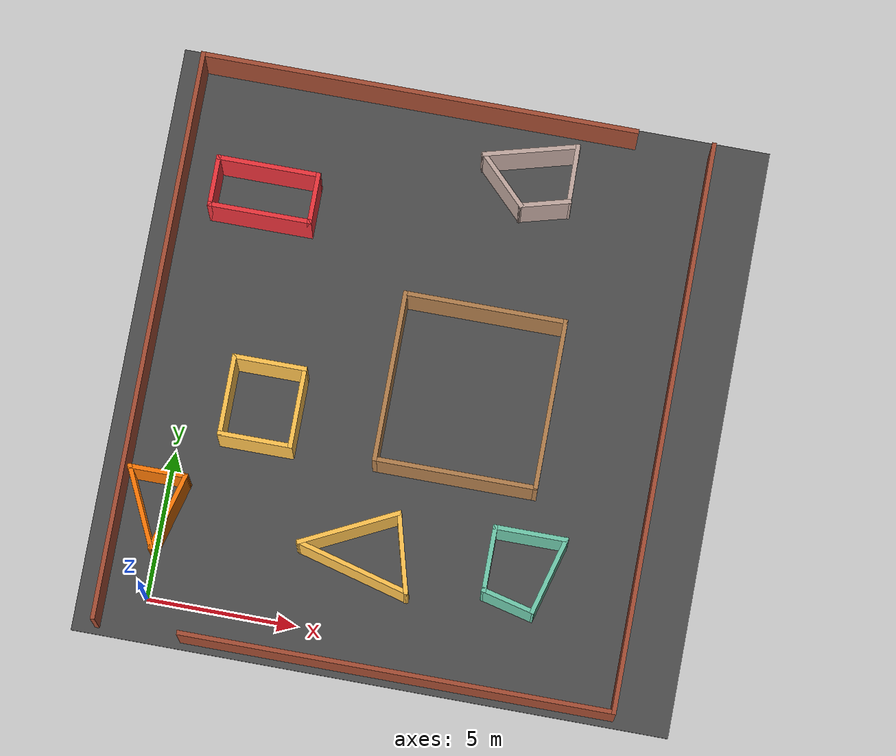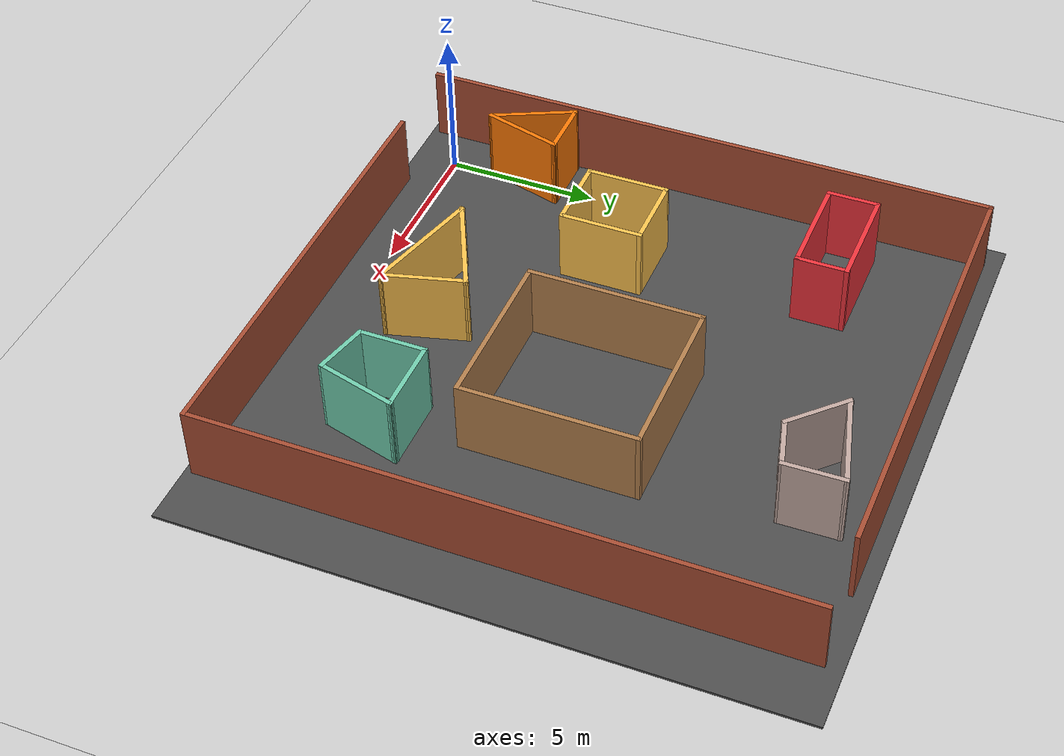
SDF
<sdf version="1.7">
 <world name="default">
  <light name="sun" type="directional">
   <pose>0 0 10 0 -0 0</pose>
   <diffuse>0.8 0.8 0.8 1</diffuse>
   <specular>0.2 0.2 0.2 1</specular>
   <attenuation>
    <range>1000</range>
    <constant>0.9</constant>
    <linear>0.01</linear>
    <quadratic>0.001</quadratic>
   </attenuation>
   <direction>-0.5 0.1 -0.9</direction>
   <spot><inner_angle>0</inner_angle><outer_angle>0</outer_angle><falloff>0</falloff></spot>
  </light>
  <model name="ground_plane">
   <static>1</static>
   <link name="link">
    <collision name="collision">
     <geometry><plane><normal>0 0 1</normal><size>100 100</size></plane></geometry>
     <surface><friction><ode><mu>100</mu><mu2>50</mu2></ode></friction></surface>
    </collision>
    <visual name="visual">
     <cast_shadows>0</cast_shadows>
     <geometry><plane><normal>0 0 1</normal><size>100 100</size></plane></geometry>
     <material>
      <script><uri>file://media/materials/scripts/gazebo.material</uri><name>Gazebo/Grey</name></script>
     </material>
    </visual>
   </link>
  </model>
  <gravity>0 0 -9.8</gravity>
  <magnetic_field>6e-06 2.3e-05 -4.2e-05</magnetic_field>
  <atmosphere type="adiabatic"/>
  <physics type="ode">
   <max_step_size>0.001</max_step_size>
   <real_time_factor>1</real_time_factor>
   <real_time_update_rate>1000</real_time_update_rate>
  </physics>
  <scene><ambient>0.4 0.4 0.4 1</ambient><background>0.7 0.7 0.7 1</background><shadows>1</shadows></scene>
  <audio><device>default</device></audio>
  <spherical_coordinates>
   <surface_model>EARTH_WGS84</surface_model>
   <latitude_deg>0</latitude_deg>
   <longitude_deg>0</longitude_deg>
   <elevation>0</elevation>
   <heading_deg>0</heading_deg>
  </spherical_coordinates>
  <model name="random">
   <pose>7.1567 8.40396 0 0 -0 0</pose>
   <link name="Wall_2">
    <collision name="Wall_2_Collision">
     <geometry><box><size>14.75 0.15 2.5</size></box></geometry>
     <pose>0 0 1.25 0 -0 0</pose>
    </collision>
    <visual name="Wall_2_Visual">
     <pose>0 0 1.25 0 -0 0</pose>
     <geometry><box><size>14.75 0.15 2.5</size></box></geometry>
     <material>
      <script><uri>file://media/materials/scripts/gazebo.material</uri><name>Gazebo/Bricks</name></script>
      <ambient>1 1 1 1</ambient>
     </material>
     <meta><layer>0</layer></meta>
    </visual>
    <pose>-1.30175 9.55 0 0 -0 0</pose>
   </link>
   <link name="Wall_4">
    <collision name="Wall_4_Collision">
     <geometry><box><size>14.5 0.15 2.5</size></box></geometry>
     <pose>0 0 1.25 0 -0 0</pose>
    </collision>
    <visual name="Wall_4_Visual">
     <pose>0 0 1.25 0 -0 0</pose>
     <geometry><box><size>14.5 0.15 2.5</size></box></geometry>
     <material>
      <script><uri>file://media/materials/scripts/gazebo.material</uri><name>Gazebo/Bricks</name></script>
      <ambient>1 1 1 1</ambient>
     </material>
     <meta><layer>0</layer></meta>
    </visual>
    <pose>1.42675 -9.55 0 0 -0 3.14159</pose>
   </link>
   <link name="Wall_46">
    <collision name="Wall_46_Collision">
     <geometry><box><size>2.75 0.15 2.5</size></box></geometry>
     <pose>0 0 1.25 0 -0 0</pose>
    </collision>
    <visual name="Wall_46_Visual">
     <pose>0 0 1.25 0 -0 0</pose>
     <geometry><box><size>2.75 0.15 2.5</size></box></geometry>
     <material>
      <script><uri>file://media/materials/scripts/gazebo.material</uri><name>Gazebo/Grey</name></script>
      <ambient>1 0.764706 0.305882 1</ambient>
     </material>
     <meta><layer>0</layer></meta>
    </visual>
    <pose>-5.68095 -1.56271 0 0 -0 -1.5708</pose>
   </link>
   <link name="Wall_47">
    <collision name="Wall_47_Collision">
     <geometry><box><size>2.5 0.15 2.5</size></box></geometry>
     <pose>0 0 1.25 0 -0 0</pose>
    </collision>
    <visual name="Wall_47_Visual">
     <pose>0 0 1.25 0 -0 0</pose>
     <geometry><box><size>2.5 0.15 2.5</size></box></geometry>
     <material>
      <script><uri>file://media/materials/scripts/gazebo.material</uri><name>Gazebo/Grey</name></script>
      <ambient>1 0.764706 0.305882 1</ambient>
     </material>
     <meta><layer>0</layer></meta>
    </visual>
    <pose>-4.50595 -2.86271 0 0 -0 0</pose>
   </link>
   <link name="Wall_48">
    <collision name="Wall_48_Collision">
     <geometry><box><size>2.75 0.15 2.5</size></box></geometry>
     <pose>0 0 1.25 0 -0 0</pose>
    </collision>
    <visual name="Wall_48_Visual">
     <pose>0 0 1.25 0 -0 0</pose>
     <geometry><box><size>2.75 0.15 2.5</size></box></geometry>
     <material>
      <script><uri>file://media/materials/scripts/gazebo.material</uri><name>Gazebo/Grey</name></script>
      <ambient>1 0.764706 0.305882 1</ambient>
     </material>
     <meta><layer>0</layer></meta>
    </visual>
    <pose>-3.33095 -1.56271 0 0 -0 1.5708</pose>
   </link>
   <link name="Wall_49">
    <collision name="Wall_49_Collision">
     <geometry><box><size>2.5 0.15 2.5</size></box></geometry>
     <pose>0 0 1.25 0 -0 0</pose>
    </collision>
    <visual name="Wall_49_Visual">
     <pose>0 0 1.25 0 -0 0</pose>
     <geometry><box><size>2.5 0.15 2.5</size></box></geometry>
     <material>
      <script><uri>file://media/materials/scripts/gazebo.material</uri><name>Gazebo/Grey</name></script>
      <ambient>1 0.764706 0.305882 1</ambient>
     </material>
     <meta><layer>0</layer></meta>
    </visual>
    <pose>-4.50595 -0.262712 0 0 -0 3.14159</pose>
   </link>
   <link name="Wall_51">
    <collision name="Wall_51_Collision">
     <geometry><box><size>5.5 0.15 2.5</size></box></geometry>
     <pose>0 0 1.25 0 -0 0</pose>
    </collision>
    <visual name="Wall_51_Visual">
     <pose>0 0 1.25 0 -0 0</pose>
     <geometry><box><size>5.5 0.15 2.5</size></box></geometry>
     <material>
      <script><uri>file://media/materials/scripts/gazebo.material</uri><name>Gazebo/Wood</name></script>
      <ambient>1 1 1 1</ambient>
     </material>
     <meta><layer>0</layer></meta>
    </visual>
    <pose>2.13455 -2.78121 0 0 -0 0</pose>
   </link>
   <link name="Wall_52">
    <collision name="Wall_52_Collision">
     <geometry><box><size>5.75 0.15 2.5</size></box></geometry>
     <pose>0 0 1.25 0 -0 0</pose>
    </collision>
    <visual name="Wall_52_Visual">
     <pose>0 0 1.25 0 -0 0</pose>
     <geometry><box><size>5.75 0.15 2.5</size></box></geometry>
     <material>
      <script><uri>file://media/materials/scripts/gazebo.material</uri><name>Gazebo/Wood</name></script>
      <ambient>1 1 1 1</ambient>
     </material>
     <meta><layer>0</layer></meta>
    </visual>
    <pose>4.80955 0.018788 0 0 -0 1.5708</pose>
   </link>
   <link name="Wall_53">
    <collision name="Wall_53_Collision">
     <geometry><box><size>5.5 0.15 2.5</size></box></geometry>
     <pose>0 0 1.25 0 -0 0</pose>
    </collision>
    <visual name="Wall_53_Visual">
     <pose>0 0 1.25 0 -0 0</pose>
     <geometry><box><size>5.5 0.15 2.5</size></box></geometry>
     <material>
      <script><uri>file://media/materials/scripts/gazebo.material</uri><name>Gazebo/Wood</name></script>
      <ambient>1 1 1 1</ambient>
     </material>
     <meta><layer>0</layer></meta>
    </visual>
    <pose>2.13455 2.81879 0 0 -0 3.14159</pose>
   </link>
   <link name="Wall_54">
    <collision name="Wall_54_Collision">
     <geometry><box><size>5.75 0.15 2.5</size></box></geometry>
     <pose>0 0 1.25 0 -0 0</pose>
    </collision>
    <visual name="Wall_54_Visual">
     <pose>0 0 1.25 0 -0 0</pose>
     <geometry><box><size>5.75 0.15 2.5</size></box></geometry>
     <material>
      <script><uri>file://media/materials/scripts/gazebo.material</uri><name>Gazebo/Wood</name></script>
      <ambient>1 1 1 1</ambient>
     </material>
     <meta><layer>0</layer></meta>
    </visual>
    <pose>-0.54045 0.018788 0 0 -0 -1.5708</pose>
   </link>
   <link name="Wall_56">
    <collision name="Wall_56_Collision">
     <geometry><box><size>3.5 0.15 2.5</size></box></geometry>
     <pose>0 0 1.25 0 -0 0</pose>
    </collision>
    <visual name="Wall_56_Visual">
     <pose>0 0 1.25 0 -0 0</pose>
     <geometry><box><size>3.5 0.15 2.5</size></box></geometry>
     <material>
      <script><uri>file://media/materials/scripts/gazebo.material</uri><name>Gazebo/Grey</name></script>
      <ambient>0.929412 0.2 0.231373 1</ambient>
     </material>
     <meta><layer>0</layer></meta>
    </visual>
    <pose>-5.76545 4.60179 0 0 -0 0</pose>
   </link>
   <link name="Wall_57">
    <collision name="Wall_57_Collision">
     <geometry><box><size>1.75 0.15 2.5</size></box></geometry>
     <pose>0 0 1.25 0 -0 0</pose>
    </collision>
    <visual name="Wall_57_Visual">
     <pose>0 0 1.25 0 -0 0</pose>
     <geometry><box><size>1.75 0.15 2.5</size></box></geometry>
     <material>
      <script><uri>file://media/materials/scripts/gazebo.material</uri><name>Gazebo/Grey</name></script>
      <ambient>0.929412 0.2 0.231373 1</ambient>
     </material>
     <meta><layer>0</layer></meta>
    </visual>
    <pose>-4.09045 5.40179 0 0 -0 1.5708</pose>
   </link>
   <link name="Wall_58">
    <collision name="Wall_58_Collision">
     <geometry><box><size>3.5 0.15 2.5</size></box></geometry>
     <pose>0 0 1.25 0 -0 0</pose>
    </collision>
    <visual name="Wall_58_Visual">
     <pose>0 0 1.25 0 -0 0</pose>
     <geometry><box><size>3.5 0.15 2.5</size></box></geometry>
     <material>
      <script><uri>file://media/materials/scripts/gazebo.material</uri><name>Gazebo/Grey</name></script>
      <ambient>0.929412 0.2 0.231373 1</ambient>
     </material>
     <meta><layer>0</layer></meta>
    </visual>
    <pose>-5.76545 6.20179 0 0 -0 3.14159</pose>
   </link>
   <link name="Wall_59">
    <collision name="Wall_59_Collision">
     <geometry><box><size>1.75 0.15 2.5</size></box></geometry>
     <pose>0 0 1.25 0 -0 0</pose>
    </collision>
    <visual name="Wall_59_Visual">
     <pose>0 0 1.25 0 -0 0</pose>
     <geometry><box><size>1.75 0.15 2.5</size></box></geometry>
     <material>
      <script><uri>file://media/materials/scripts/gazebo.material</uri><name>Gazebo/Grey</name></script>
      <ambient>0.929412 0.2 0.231373 1</ambient>
     </material>
     <meta><layer>0</layer></meta>
    </visual>
    <pose>-7.44045 5.40179 0 0 -0 -1.5708</pose>
   </link>
   <link name="Wall_61">
    <collision name="Wall_61_Collision">
     <geometry><box><size>1.75 0.15 2.5</size></box></geometry>
     <pose>0 0 1.25 0 -0 0</pose>
    </collision>
    <visual name="Wall_61_Visual">
     <pose>0 0 1.25 0 -0 0</pose>
     <geometry><box><size>1.75 0.15 2.5</size></box></geometry>
     <material>
      <script><uri>file://media/materials/scripts/gazebo.material</uri><name>Gazebo/Grey</name></script>
      <ambient>0.760784 0.662745 0.627451 1</ambient>
     </material>
     <meta><layer>0</layer></meta>
    </visual>
    <pose>3.43994 6.60694 0 0 -0 -2.87979</pose>
   </link>
   <link name="Wall_62">
    <collision name="Wall_62_Collision">
     <geometry><box><size>2.25 0.15 2.5</size></box></geometry>
     <pose>0 0 1.25 0 -0 0</pose>
    </collision>
    <visual name="Wall_62_Visual">
     <pose>0 0 1.25 0 -0 0</pose>
     <geometry><box><size>2.25 0.15 2.5</size></box></geometry>
     <material>
      <script><uri>file://media/materials/scripts/gazebo.material</uri><name>Gazebo/Grey</name></script>
      <ambient>0.760784 0.662745 0.627451 1</ambient>
     </material>
     <meta><layer>0</layer></meta>
    </visual>
    <pose>1.92474 7.14234 0 0 -0 2.35619</pose>
   </link>
   <link name="Wall_63">
    <collision name="Wall_63_Collision">
     <geometry><box><size>3.25 0.15 2.5</size></box></geometry>
     <pose>0 0 1.25 0 -0 0</pose>
    </collision>
    <visual name="Wall_63_Visual">
     <pose>0 0 1.25 0 -0 0</pose>
     <geometry><box><size>3.25 0.15 2.5</size></box></geometry>
     <material>
      <script><uri>file://media/materials/scripts/gazebo.material</uri><name>Gazebo/Grey</name></script>
      <ambient>0.760784 0.662745 0.627451 1</ambient>
     </material>
     <meta><layer>0</layer></meta>
    </visual>
    <pose>2.67946 8.28598 0 0 -0 0.261799</pose>
   </link>
   <link name="Wall_64">
    <collision name="Wall_64_Collision">
     <geometry><box><size>2.0235 0.15 2.5</size></box></geometry>
     <pose>0 0 1.25 0 -0 0</pose>
    </collision>
    <visual name="Wall_64_Visual">
     <pose>0 0 1.25 0 -0 0</pose>
     <geometry><box><size>2.0235 0.15 2.5</size></box></geometry>
     <material>
      <script><uri>file://media/materials/scripts/gazebo.material</uri><name>Gazebo/Grey</name></script>
      <ambient>0.760784 0.662745 0.627451 1</ambient>
     </material>
     <meta><layer>0</layer></meta>
    </visual>
    <pose>4.19466 7.75057 0 0 -0 -1.55156</pose>
   </link>
   <link name="Wall_66">
    <collision name="Wall_66_Collision">
     <geometry><box><size>4 0.15 2.5</size></box></geometry>
     <pose>0 0 1.25 0 -0 0</pose>
    </collision>
    <visual name="Wall_66_Visual">
     <pose>0 0 1.25 0 -0 0</pose>
     <geometry><box><size>4 0.15 2.5</size></box></geometry>
     <material>
      <script><uri>file://media/materials/scripts/gazebo.material</uri><name>Gazebo/Grey</name></script>
      <ambient>1 0.764706 0.305882 1</ambient>
     </material>
     <meta><layer>0</layer></meta>
    </visual>
    <pose>-0.606176 -6.41467 0 0 -0 -0.261799</pose>
   </link>
   <link name="Wall_67">
    <collision name="Wall_67_Collision">
     <geometry><box><size>2.75 0.15 2.5</size></box></geometry>
     <pose>0 0 1.25 0 -0 0</pose>
    </collision>
    <visual name="Wall_67_Visual">
     <pose>0 0 1.25 0 -0 0</pose>
     <geometry><box><size>2.75 0.15 2.5</size></box></geometry>
     <material>
      <script><uri>file://media/materials/scripts/gazebo.material</uri><name>Gazebo/Grey</name></script>
      <ambient>1 0.764706 0.305882 1</ambient>
     </material>
     <meta><layer>0</layer></meta>
    </visual>
    <pose>0.916767 -5.65719 0 0 -0 1.8326</pose>
   </link>
   <link name="Wall_68">
    <collision name="Wall_68_Collision">
     <geometry><box><size>3.55184 0.15 2.5</size></box></geometry>
     <pose>0 0 1.25 0 -0 0</pose>
    </collision>
    <visual name="Wall_68_Visual">
     <pose>0 0 1.25 0 -0 0</pose>
     <geometry><box><size>3.55184 0.15 2.5</size></box></geometry>
     <material>
      <script><uri>file://media/materials/scripts/gazebo.material</uri><name>Gazebo/Grey</name></script>
      <ambient>1 0.764706 0.305882 1</ambient>
     </material>
     <meta><layer>0</layer></meta>
    </visual>
    <pose>-0.94264 -5.15897 0 0 -0 -2.68004</pose>
   </link>
   <link name="Wall_7">
    <collision name="Wall_7_Collision">
     <geometry><box><size>19.25 0.15 2.5</size></box></geometry>
     <pose>0 0 1.25 0 -0 0</pose>
    </collision>
    <visual name="Wall_7_Visual">
     <pose>0 0 1.25 0 -0 0</pose>
     <geometry><box><size>19.25 0.15 2.5</size></box></geometry>
     <material>
      <script><uri>file://media/materials/scripts/gazebo.material</uri><name>Gazebo/Bricks</name></script>
      <ambient>1 1 1 1</ambient>
     </material>
     <meta><layer>0</layer></meta>
    </visual>
    <pose>-8.60175 0 0 0 -0 -1.5708</pose>
   </link>
   <link name="Wall_70">
    <collision name="Wall_70_Collision">
     <geometry><box><size>2.25 0.15 2.5</size></box></geometry>
     <pose>0 0 1.25 0 -0 0</pose>
    </collision>
    <visual name="Wall_70_Visual">
     <pose>0 0 1.25 0 -0 0</pose>
     <geometry><box><size>2.25 0.15 2.5</size></box></geometry>
     <material>
      <script><uri>file://media/materials/scripts/gazebo.material</uri><name>Gazebo/Grey</name></script>
      <ambient>0.435294 0.796078 0.67451 1</ambient>
     </material>
     <meta><layer>0</layer></meta>
    </visual>
    <pose>3.74311 -5.33601 0 0 -0 1.5708</pose>
   </link>
   <link name="Wall_71">
    <collision name="Wall_71_Collision">
     <geometry><box><size>2.5 0.15 2.5</size></box></geometry>
     <pose>0 0 1.25 0 -0 0</pose>
    </collision>
    <visual name="Wall_71_Visual">
     <pose>0 0 1.25 0 -0 0</pose>
     <geometry><box><size>2.5 0.15 2.5</size></box></geometry>
     <material>
      <script><uri>file://media/materials/scripts/gazebo.material</uri><name>Gazebo/Grey</name></script>
      <ambient>0.435294 0.796078 0.67451 1</ambient>
     </material>
     <meta><layer>0</layer></meta>
    </visual>
    <pose>4.91811 -4.28601 0 0 -0 0</pose>
   </link>
   <link name="Wall_72">
    <collision name="Wall_72_Collision">
     <geometry><box><size>2.75 0.15 2.5</size></box></geometry>
     <pose>0 0 1.25 0 -0 0</pose>
    </collision>
    <visual name="Wall_72_Visual">
     <pose>0 0 1.25 0 -0 0</pose>
     <geometry><box><size>2.75 0.15 2.5</size></box></geometry>
     <material>
      <script><uri>file://media/materials/scripts/gazebo.material</uri><name>Gazebo/Grey</name></script>
      <ambient>0.435294 0.796078 0.67451 1</ambient>
     </material>
     <meta><layer>0</layer></meta>
    </visual>
    <pose>5.75665 -5.54171 0 0 -0 -1.8326</pose>
   </link>
   <link name="Wall_73">
    <collision name="Wall_73_Collision">
     <geometry><box><size>1.87679 0.15 2.5</size></box></geometry>
     <pose>0 0 1.25 0 -0 0</pose>
    </collision>
    <visual name="Wall_73_Visual">
     <pose>0 0 1.25 0 -0 0</pose>
     <geometry><box><size>1.87679 0.15 2.5</size></box></geometry>
     <material>
      <script><uri>file://media/materials/scripts/gazebo.material</uri><name>Gazebo/Grey</name></script>
      <ambient>0.435294 0.796078 0.67451 1</ambient>
     </material>
     <meta><layer>0</layer></meta>
    </visual>
    <pose>4.58165 -6.59171 0 0 -0 2.90103</pose>
   </link>
   <link name="Wall_75">
    <collision name="Wall_75_Collision">
     <geometry><box><size>2 0.15 2.5</size></box></geometry>
     <pose>0 0 1.25 0 -0 0</pose>
    </collision>
    <visual name="Wall_75_Visual">
     <pose>0 0 1.25 0 -0 0</pose>
     <geometry><box><size>2 0.15 2.5</size></box></geometry>
     <material>
      <script><uri>file://media/materials/scripts/gazebo.material</uri><name>Gazebo/Grey</name></script>
      <ambient>0.996078 0.47451 0.0196078 1</ambient>
     </material>
     <meta><layer>0</layer></meta>
    </visual>
    <pose>-7.43623 -4.45557 0 0 -0 0</pose>
   </link>
   <link name="Wall_76">
    <collision name="Wall_76_Collision">
     <geometry><box><size>2.75 0.15 2.5</size></box></geometry>
     <pose>0 0 1.25 0 -0 0</pose>
    </collision>
    <visual name="Wall_76_Visual">
     <pose>0 0 1.25 0 -0 0</pose>
     <geometry><box><size>2.75 0.15 2.5</size></box></geometry>
     <material>
      <script><uri>file://media/materials/scripts/gazebo.material</uri><name>Gazebo/Grey</name></script>
      <ambient>0.996078 0.47451 0.0196078 1</ambient>
     </material>
     <meta><layer>0</layer></meta>
    </visual>
    <pose>-6.8477 -5.71128 0 0 -0 -1.8326</pose>
   </link>
   <link name="Wall_77">
    <collision name="Wall_77_Collision">
     <geometry><box><size>2.92356 0.15 2.5</size></box></geometry>
     <pose>0 0 1.25 0 -0 0</pose>
    </collision>
    <visual name="Wall_77_Visual">
     <pose>0 0 1.25 0 -0 0</pose>
     <geometry><box><size>2.92356 0.15 2.5</size></box></geometry>
     <material>
      <script><uri>file://media/materials/scripts/gazebo.material</uri><name>Gazebo/Grey</name></script>
      <ambient>0.996078 0.47451 0.0196078 1</ambient>
     </material>
     <meta><layer>0</layer></meta>
    </visual>
    <pose>-7.7727 -5.71128 0 0 -0 2.00908</pose>
   </link>
   <link name="Wall_9">
    <collision name="Wall_9_Collision">
     <geometry><box><size>19.25 0.15 2.5</size></box></geometry>
     <pose>0 0 1.25 0 -0 0</pose>
    </collision>
    <visual name="Wall_9_Visual">
     <pose>0 0 1.25 0 -0 0</pose>
     <geometry><box><size>19.25 0.15 2.5</size></box></geometry>
     <material>
      <script><uri>file://media/materials/scripts/gazebo.material</uri><name>Gazebo/Bricks</name></script>
      <ambient>1 1 1 1</ambient>
     </material>
     <meta><layer>0</layer></meta>
    </visual>
    <pose>8.60175 0 0 0 -0 1.5708</pose>
   </link>
   <static>1</static>
  </model>
  <model name="asphalt_plane">
   <static>1</static>
   <link name="link">
    <collision name="collision">
     <geometry><box><size>20 20 0.1</size></box></geometry>
     <surface><friction><ode><mu>0.5</mu><mu2>0.3</mu2></ode></friction></surface>
    </collision>
    <visual name="visual">
     <cast_shadows>0</cast_shadows>
     <geometry><box><size>20 20 0.1</size></box></geometry>
     <material>
      <script>
       <uri>model://asphalt_plane/materials/scripts</uri>
       <uri>model://asphalt_plane/materials/textures</uri>
       <name>vrc/asphalt</name>
      </script>
     </material>
    </visual>
   </link>
   <pose>7.70438 8.55241 0 0 -0 0</pose>
  </model>
 </world>
</sdf>
